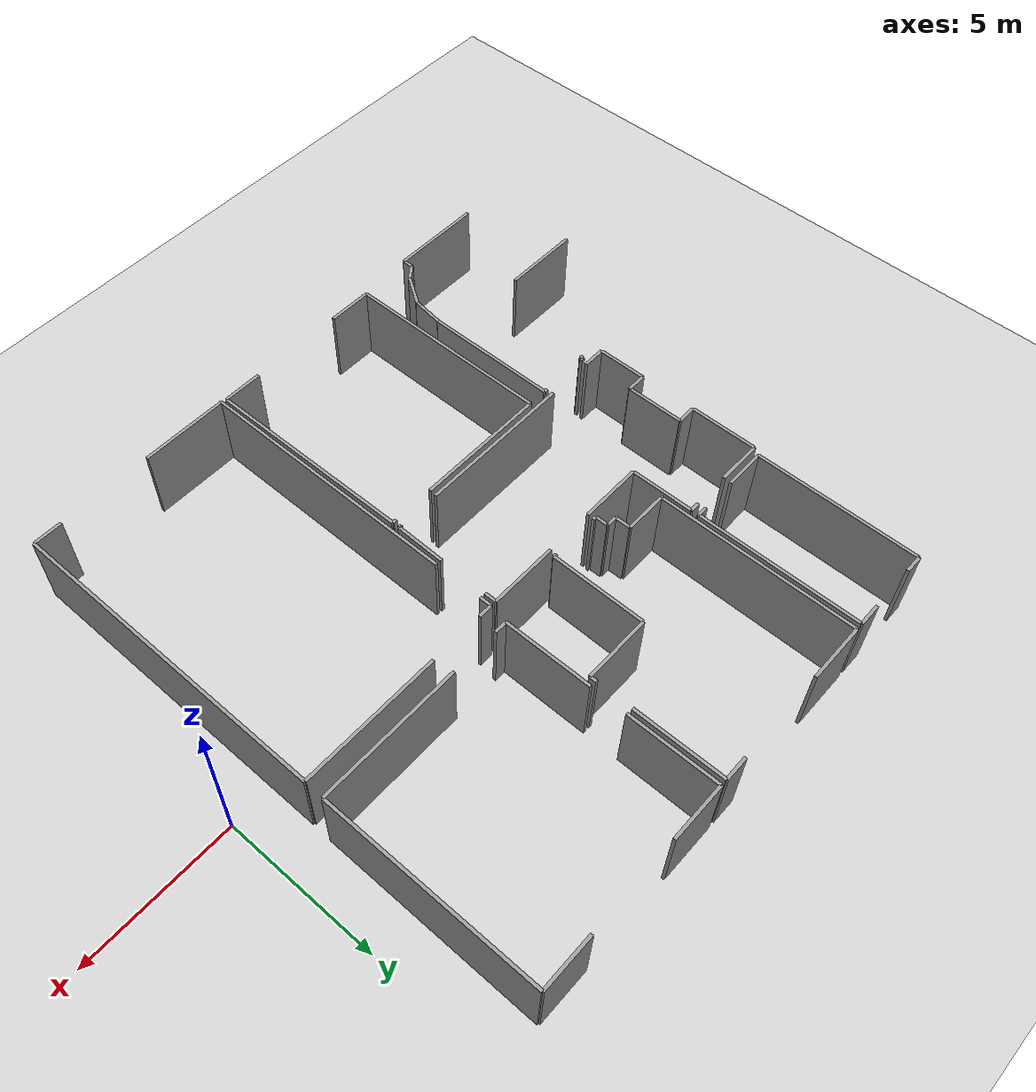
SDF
<sdf version="1.6">
 <world name="default">
  <model name="ground_plane">
   <static>1</static>
   <link name="link">
    <collision name="collision">
     <geometry><plane><normal>0 0 1</normal><size>100 100</size></plane></geometry>
     <surface><friction><ode><mu>100</mu><mu2>50</mu2></ode></friction></surface>
    </collision>
    <visual name="visual">
     <cast_shadows>0</cast_shadows>
     <geometry><plane><normal>0 0 1</normal><size>100 100</size></plane></geometry>
     <material>
      <script><uri>file://media/materials/scripts/gazebo.material</uri><name>Gazebo/Grey</name></script>
     </material>
    </visual>
   </link>
  </model>
  <model name="0510034840_A-40">
   <static>1</static>
   <link name="Wall_52">
    <collision name="Wall_52_Collision">
     <geometry><box><size>2.99740421292 0.1 2.5</size></box></geometry>
     <pose>1.49870210646 0 1.25 0 0 0</pose>
    </collision>
    <visual name="Wall_52_Visual">
     <pose>1.49870210646 0 1.25 0 0 0</pose>
     <geometry><box><size>2.99740421292 0.1 2.5</size></box></geometry>
     <material>
      <script><uri>file://media/materials/scripts/gazebo.material</uri><name>Gazebo/Grey</name></script>
      <ambient>1 1 1 1</ambient>
     </material>
    </visual>
    <pose>17.5726534783 -18.1401725024 0 0 0 3.14159265359</pose>
   </link>
   <link name="Wall_59">
    <collision name="Wall_59_Collision">
     <geometry><box><size>2.50769533456 0.1 2.5</size></box></geometry>
     <pose>1.25384766728 0 1.25 0 0 0</pose>
    </collision>
    <visual name="Wall_59_Visual">
     <pose>1.25384766728 0 1.25 0 0 0</pose>
     <geometry><box><size>2.50769533456 0.1 2.5</size></box></geometry>
     <material>
      <script><uri>file://media/materials/scripts/gazebo.material</uri><name>Gazebo/Grey</name></script>
      <ambient>1 1 1 1</ambient>
     </material>
    </visual>
    <pose>15.8744121399 -14.9674733281 0 0 0 3.14159265359</pose>
   </link>
   <link name="Wall_65">
    <collision name="Wall_65_Collision">
     <geometry><box><size>0.118428818949 0.1 2.5</size></box></geometry>
     <pose>0.0592144094743 0 1.25 0 0 0</pose>
    </collision>
    <visual name="Wall_65_Visual">
     <pose>0.0592144094743 0 1.25 0 0 0</pose>
     <geometry><box><size>0.118428818949 0.1 2.5</size></box></geometry>
     <material>
      <script><uri>file://media/materials/scripts/gazebo.material</uri><name>Gazebo/Grey</name></script>
      <ambient>1 1 1 1</ambient>
     </material>
    </visual>
    <pose>16.9808901836 -11.4278098284 0 0 0 1.57079632679</pose>
   </link>
   <link name="Wall_66">
    <collision name="Wall_66_Collision">
     <geometry><box><size>0.120840552668 0.1 2.5</size></box></geometry>
     <pose>0.0604202763339 0 1.25 0 0 0</pose>
    </collision>
    <visual name="Wall_66_Visual">
     <pose>0.0604202763339 0 1.25 0 0 0</pose>
     <geometry><box><size>0.120840552668 0.1 2.5</size></box></geometry>
     <material>
      <script><uri>file://media/materials/scripts/gazebo.material</uri><name>Gazebo/Grey</name></script>
      <ambient>1 1 1 1</ambient>
     </material>
    </visual>
    <pose>16.9808901836 -11.3093810095 0 0 0 0.0</pose>
   </link>
   <link name="Wall_67">
    <collision name="Wall_67_Collision">
     <geometry><box><size>0.108781884072 0.1 2.5</size></box></geometry>
     <pose>0.0543909420359 0 1.25 0 0 0</pose>
    </collision>
    <visual name="Wall_67_Visual">
     <pose>0.0543909420359 0 1.25 0 0 0</pose>
     <geometry><box><size>0.108781884072 0.1 2.5</size></box></geometry>
     <material>
      <script><uri>file://media/materials/scripts/gazebo.material</uri><name>Gazebo/Grey</name></script>
      <ambient>1 1 1 1</ambient>
     </material>
    </visual>
    <pose>18.653998718 -11.3093810095 0 0 0 0.0</pose>
   </link>
   <link name="Wall_68">
    <collision name="Wall_68_Collision">
     <geometry><box><size>4.26140654849 0.1 2.5</size></box></geometry>
     <pose>2.13070327425 0 1.25 0 0 0</pose>
    </collision>
    <visual name="Wall_68_Visual">
     <pose>2.13070327425 0 1.25 0 0 0</pose>
     <geometry><box><size>4.26140654849 0.1 2.5</size></box></geometry>
     <material>
      <script><uri>file://media/materials/scripts/gazebo.material</uri><name>Gazebo/Grey</name></script>
      <ambient>1 1 1 1</ambient>
     </material>
    </visual>
    <pose>18.762780602 -11.3093810095 0 0 0 -1.57079632679</pose>
   </link>
   <link name="Wall_69">
    <collision name="Wall_69_Collision">
     <geometry><box><size>1.02752098959 0.1 2.5</size></box></geometry>
     <pose>0.513760494797 0 1.25 0 0 0</pose>
    </collision>
    <visual name="Wall_69_Visual">
     <pose>0.513760494797 0 1.25 0 0 0</pose>
     <geometry><box><size>1.02752098959 0.1 2.5</size></box></geometry>
     <material>
      <script><uri>file://media/materials/scripts/gazebo.material</uri><name>Gazebo/Grey</name></script>
      <ambient>1 1 1 1</ambient>
     </material>
    </visual>
    <pose>18.762780602 -15.570787558 0 0 0 -1.71147046097</pose>
   </link>
   <link name="Wall_70">
    <collision name="Wall_70_Collision">
     <geometry><box><size>1.09154760842 0.1 2.5</size></box></geometry>
     <pose>0.545773804212 0 1.25 0 0 0</pose>
    </collision>
    <visual name="Wall_70_Visual">
     <pose>0.545773804212 0 1.25 0 0 0</pose>
     <geometry><box><size>1.09154760842 0.1 2.5</size></box></geometry>
     <material>
      <script><uri>file://media/materials/scripts/gazebo.material</uri><name>Gazebo/Grey</name></script>
      <ambient>1 1 1 1</ambient>
     </material>
    </visual>
    <pose>18.6187112457 -16.5881583874 0 0 0 -2.16860380256</pose>
   </link>
   <link name="Wall_71">
    <collision name="Wall_71_Collision">
     <geometry><box><size>0.535511781286 0.1 2.5</size></box></geometry>
     <pose>0.267755890643 0 1.25 0 0 0</pose>
    </collision>
    <visual name="Wall_71_Visual">
     <pose>0.267755890643 0 1.25 0 0 0</pose>
     <geometry><box><size>0.535511781286 0.1 2.5</size></box></geometry>
     <material>
      <script><uri>file://media/materials/scripts/gazebo.material</uri><name>Gazebo/Grey</name></script>
      <ambient>1 1 1 1</ambient>
     </material>
    </visual>
    <pose>18.004353814 -17.4904006651 0 0 0 -2.50880558985</pose>
   </link>
   <link name="Wall_72">
    <collision name="Wall_72_Collision">
     <geometry><box><size>0.333073144145 0.1 2.5</size></box></geometry>
     <pose>0.166536572073 0 1.25 0 0 0</pose>
    </collision>
    <visual name="Wall_72_Visual">
     <pose>0.166536572073 0 1.25 0 0 0</pose>
     <geometry><box><size>0.333073144145 0.1 2.5</size></box></geometry>
     <material>
      <script><uri>file://media/materials/scripts/gazebo.material</uri><name>Gazebo/Grey</name></script>
      <ambient>1 1 1 1</ambient>
     </material>
    </visual>
    <pose>17.5725265449 -17.8070993825 0 0 0 -1.57041522925</pose>
   </link>
   <link name="Wall_73">
    <collision name="Wall_73_Collision">
     <geometry><box><size>0.0906304145009 0.1 2.5</size></box></geometry>
     <pose>0.0453152072504 0 1.25 0 0 0</pose>
    </collision>
    <visual name="Wall_73_Visual">
     <pose>0.0453152072504 0 1.25 0 0 0</pose>
     <geometry><box><size>0.0906304145009 0.1 2.5</size></box></geometry>
     <material>
      <script><uri>file://media/materials/scripts/gazebo.material</uri><name>Gazebo/Grey</name></script>
      <ambient>1 1 1 1</ambient>
     </material>
    </visual>
    <pose>25.1599677589 -11.0862321738 0 0 0 3.14159265359</pose>
   </link>
   <link name="Wall_74">
    <collision name="Wall_74_Collision">
     <geometry><box><size>5.06603707723 0.1 2.5</size></box></geometry>
     <pose>2.53301853862 0 1.25 0 0 0</pose>
    </collision>
    <visual name="Wall_74_Visual">
     <pose>2.53301853862 0 1.25 0 0 0</pose>
     <geometry><box><size>5.06603707723 0.1 2.5</size></box></geometry>
     <material>
      <script><uri>file://media/materials/scripts/gazebo.material</uri><name>Gazebo/Grey</name></script>
      <ambient>1 1 1 1</ambient>
     </material>
    </visual>
    <pose>23.7051845928 -11.0862321738 0 0 0 3.14159265359</pose>
   </link>
   <link name="Wall_75">
    <collision name="Wall_75_Collision">
     <geometry><box><size>0.725804916129 0.1 2.5</size></box></geometry>
     <pose>0.362902458064 0 1.25 0 0 0</pose>
    </collision>
    <visual name="Wall_75_Visual">
     <pose>0.362902458064 0 1.25 0 0 0</pose>
     <geometry><box><size>0.725804916129 0.1 2.5</size></box></geometry>
     <material>
      <script><uri>file://media/materials/scripts/gazebo.material</uri><name>Gazebo/Grey</name></script>
      <ambient>1 1 1 1</ambient>
     </material>
    </visual>
    <pose>17.1154395385 -11.0862321738 0 0 0 3.14159265359</pose>
   </link>
   <link name="Wall_76">
    <collision name="Wall_76_Collision">
     <geometry><box><size>1.56788078419 0.1 2.5</size></box></geometry>
     <pose>0.783940392097 0 1.25 0 0 0</pose>
    </collision>
    <visual name="Wall_76_Visual">
     <pose>0.783940392097 0 1.25 0 0 0</pose>
     <geometry><box><size>1.56788078419 0.1 2.5</size></box></geometry>
     <material>
      <script><uri>file://media/materials/scripts/gazebo.material</uri><name>Gazebo/Grey</name></script>
      <ambient>1 1 1 1</ambient>
     </material>
    </visual>
    <pose>16.3896346223 -11.0862321738 0 0 0 1.57079632679</pose>
   </link>
   <link name="Wall_77">
    <collision name="Wall_77_Collision">
     <geometry><box><size>0.609660897546 0.1 2.5</size></box></geometry>
     <pose>0.304830448773 0 1.25 0 0 0</pose>
    </collision>
    <visual name="Wall_77_Visual">
     <pose>0.304830448773 0 1.25 0 0 0</pose>
     <geometry><box><size>0.609660897546 0.1 2.5</size></box></geometry>
     <material>
      <script><uri>file://media/materials/scripts/gazebo.material</uri><name>Gazebo/Grey</name></script>
      <ambient>1 1 1 1</ambient>
     </material>
    </visual>
    <pose>16.3896346223 -9.5183513896 0 0 0 0.0</pose>
   </link>
   <link name="Wall_78">
    <collision name="Wall_78_Collision">
     <geometry><box><size>1.83609096044 0.1 2.5</size></box></geometry>
     <pose>0.918045480221 0 1.25 0 0 0</pose>
    </collision>
    <visual name="Wall_78_Visual">
     <pose>0.918045480221 0 1.25 0 0 0</pose>
     <geometry><box><size>1.83609096044 0.1 2.5</size></box></geometry>
     <material>
      <script><uri>file://media/materials/scripts/gazebo.material</uri><name>Gazebo/Grey</name></script>
      <ambient>1 1 1 1</ambient>
     </material>
    </visual>
    <pose>16.9992955199 -9.5183513896 0 0 0 1.57079632679</pose>
   </link>
   <link name="Wall_79">
    <collision name="Wall_79_Collision">
     <geometry><box><size>0.616896098703 0.1 2.5</size></box></geometry>
     <pose>0.308448049352 0 1.25 0 0 0</pose>
    </collision>
    <visual name="Wall_79_Visual">
     <pose>0.308448049352 0 1.25 0 0 0</pose>
     <geometry><box><size>0.616896098703 0.1 2.5</size></box></geometry>
     <material>
      <script><uri>file://media/materials/scripts/gazebo.material</uri><name>Gazebo/Grey</name></script>
      <ambient>1 1 1 1</ambient>
     </material>
    </visual>
    <pose>16.9992955199 -7.68226042916 0 0 0 3.14159265359</pose>
   </link>
   <link name="Wall_80">
    <collision name="Wall_80_Collision">
     <geometry><box><size>2.17728781503 0.1 2.5</size></box></geometry>
     <pose>1.08864390752 0 1.25 0 0 0</pose>
    </collision>
    <visual name="Wall_80_Visual">
     <pose>1.08864390752 0 1.25 0 0 0</pose>
     <geometry><box><size>2.17728781503 0.1 2.5</size></box></geometry>
     <material>
      <script><uri>file://media/materials/scripts/gazebo.material</uri><name>Gazebo/Grey</name></script>
      <ambient>1 1 1 1</ambient>
     </material>
    </visual>
    <pose>16.3823994212 -7.68226042916 0 0 0 1.57079632679</pose>
   </link>
   <link name="Wall_81">
    <collision name="Wall_81_Collision">
     <geometry><box><size>1.46595330122 0.1 2.5</size></box></geometry>
     <pose>0.73297665061 0 1.25 0 0 0</pose>
    </collision>
    <visual name="Wall_81_Visual">
     <pose>0.73297665061 0 1.25 0 0 0</pose>
     <geometry><box><size>1.46595330122 0.1 2.5</size></box></geometry>
     <material>
      <script><uri>file://media/materials/scripts/gazebo.material</uri><name>Gazebo/Grey</name></script>
      <ambient>1 1 1 1</ambient>
     </material>
    </visual>
    <pose>16.3823994212 -5.50497261413 0 0 0 0.0</pose>
   </link>
   <link name="Wall_82">
    <collision name="Wall_82_Collision">
     <geometry><box><size>0.316698717338 0.1 2.5</size></box></geometry>
     <pose>0.158349358669 0 1.25 0 0 0</pose>
    </collision>
    <visual name="Wall_82_Visual">
     <pose>0.158349358669 0 1.25 0 0 0</pose>
     <geometry><box><size>0.316698717338 0.1 2.5</size></box></geometry>
     <material>
      <script><uri>file://media/materials/scripts/gazebo.material</uri><name>Gazebo/Grey</name></script>
      <ambient>1 1 1 1</ambient>
     </material>
    </visual>
    <pose>19.0505385148 -5.50497261413 0 0 0 0.0</pose>
   </link>
   <link name="Wall_83">
    <collision name="Wall_83_Collision">
     <geometry><box><size>2.0226829903 0.1 2.5</size></box></geometry>
     <pose>1.01134149515 0 1.25 0 0 0</pose>
    </collision>
    <visual name="Wall_83_Visual">
     <pose>1.01134149515 0 1.25 0 0 0</pose>
     <geometry><box><size>2.0226829903 0.1 2.5</size></box></geometry>
     <material>
      <script><uri>file://media/materials/scripts/gazebo.material</uri><name>Gazebo/Grey</name></script>
      <ambient>1 1 1 1</ambient>
     </material>
    </visual>
    <pose>19.3672372321 -5.50497261413 0 0 0 -1.57079632679</pose>
   </link>
   <link name="Wall_84">
    <collision name="Wall_84_Collision">
     <geometry><box><size>2.02065205664 0.1 2.5</size></box></geometry>
     <pose>1.01032602832 0 1.25 0 0 0</pose>
    </collision>
    <visual name="Wall_84_Visual">
     <pose>1.01032602832 0 1.25 0 0 0</pose>
     <geometry><box><size>2.02065205664 0.1 2.5</size></box></geometry>
     <material>
      <script><uri>file://media/materials/scripts/gazebo.material</uri><name>Gazebo/Grey</name></script>
      <ambient>1 1 1 1</ambient>
     </material>
    </visual>
    <pose>19.3672372321 -7.52765560442 0 0 0 0.0</pose>
   </link>
   <link name="Wall_85">
    <collision name="Wall_85_Collision">
     <geometry><box><size>2.22806115649 0.1 2.5</size></box></geometry>
     <pose>1.11403057824 0 1.25 0 0 0</pose>
    </collision>
    <visual name="Wall_85_Visual">
     <pose>1.11403057824 0 1.25 0 0 0</pose>
     <geometry><box><size>2.22806115649 0.1 2.5</size></box></geometry>
     <material>
      <script><uri>file://media/materials/scripts/gazebo.material</uri><name>Gazebo/Grey</name></script>
      <ambient>1 1 1 1</ambient>
     </material>
    </visual>
    <pose>22.9649092744 -7.52765560442 0 0 0 0.0</pose>
   </link>
   <link name="Wall_86">
    <collision name="Wall_86_Collision">
     <geometry><box><size>0.379530727392 0.1 2.5</size></box></geometry>
     <pose>0.189765363696 0 1.25 0 0 0</pose>
    </collision>
    <visual name="Wall_86_Visual">
     <pose>0.189765363696 0 1.25 0 0 0</pose>
     <geometry><box><size>0.379530727392 0.1 2.5</size></box></geometry>
     <material>
      <script><uri>file://media/materials/scripts/gazebo.material</uri><name>Gazebo/Grey</name></script>
      <ambient>1 1 1 1</ambient>
     </material>
    </visual>
    <pose>25.1929704309 -7.52765560442 0 0 0 -1.57079632679</pose>
   </link>
   <link name="Wall_87">
    <collision name="Wall_87_Collision">
     <geometry><box><size>1.60338100902 0.1 2.5</size></box></geometry>
     <pose>0.801690504511 0 1.25 0 0 0</pose>
    </collision>
    <visual name="Wall_87_Visual">
     <pose>0.801690504511 0 1.25 0 0 0</pose>
     <geometry><box><size>1.60338100902 0.1 2.5</size></box></geometry>
     <material>
      <script><uri>file://media/materials/scripts/gazebo.material</uri><name>Gazebo/Grey</name></script>
      <ambient>1 1 1 1</ambient>
     </material>
    </visual>
    <pose>25.1929704309 -9.48319085064 0 0 0 -1.5913809555</pose>
   </link>
   <link name="Wall_88">
    <collision name="Wall_88_Collision">
     <geometry><box><size>0.326599518923 0.1 2.5</size></box></geometry>
     <pose>0.163299759461 0 1.25 0 0 0</pose>
    </collision>
    <visual name="Wall_88_Visual">
     <pose>0.163299759461 0 1.25 0 0 0</pose>
     <geometry><box><size>0.326599518923 0.1 2.5</size></box></geometry>
     <material>
      <script><uri>file://media/materials/scripts/gazebo.material</uri><name>Gazebo/Grey</name></script>
      <ambient>1 1 1 1</ambient>
     </material>
    </visual>
    <pose>19.3507358961 -5.25821417465 0 0 0 3.14159265359</pose>
   </link>
   <link name="Wall_89">
    <collision name="Wall_89_Collision">
     <geometry><box><size>1.33533888032 0.1 2.5</size></box></geometry>
     <pose>0.66766944016 0 1.25 0 0 0</pose>
    </collision>
    <visual name="Wall_89_Visual">
     <pose>0.66766944016 0 1.25 0 0 0</pose>
     <geometry><box><size>1.33533888032 0.1 2.5</size></box></geometry>
     <material>
      <script><uri>file://media/materials/scripts/gazebo.material</uri><name>Gazebo/Grey</name></script>
      <ambient>1 1 1 1</ambient>
     </material>
    </visual>
    <pose>17.8712007261 -5.25821417465 0 0 0 3.14159265359</pose>
   </link>
   <link name="Wall_90">
    <collision name="Wall_90_Collision">
     <geometry><box><size>5.25707177446 0.1 2.5</size></box></geometry>
     <pose>2.62853588723 0 1.25 0 0 0</pose>
    </collision>
    <visual name="Wall_90_Visual">
     <pose>2.62853588723 0 1.25 0 0 0</pose>
     <geometry><box><size>5.25707177446 0.1 2.5</size></box></geometry>
     <material>
      <script><uri>file://media/materials/scripts/gazebo.material</uri><name>Gazebo/Grey</name></script>
      <ambient>1 1 1 1</ambient>
     </material>
    </visual>
    <pose>16.5358618457 -5.25821417465 0 0 0 1.57079632679</pose>
   </link>
   <link name="Wall_91">
    <collision name="Wall_91_Collision">
     <geometry><box><size>0.573865691819 0.1 2.5</size></box></geometry>
     <pose>0.286932845909 0 1.25 0 0 0</pose>
    </collision>
    <visual name="Wall_91_Visual">
     <pose>0.286932845909 0 1.25 0 0 0</pose>
     <geometry><box><size>0.573865691819 0.1 2.5</size></box></geometry>
     <material>
      <script><uri>file://media/materials/scripts/gazebo.material</uri><name>Gazebo/Grey</name></script>
      <ambient>1 1 1 1</ambient>
     </material>
    </visual>
    <pose>16.5358618457 -0.00114240018279 0 0 0 0.0</pose>
   </link>
   <link name="Wall_92">
    <collision name="Wall_92_Collision">
     <geometry><box><size>0.734817184237 0.1 2.5</size></box></geometry>
     <pose>0.367408592119 0 1.25 0 0 0</pose>
    </collision>
    <visual name="Wall_92_Visual">
     <pose>0.367408592119 0 1.25 0 0 0</pose>
     <geometry><box><size>0.734817184237 0.1 2.5</size></box></geometry>
     <material>
      <script><uri>file://media/materials/scripts/gazebo.material</uri><name>Gazebo/Grey</name></script>
      <ambient>1 1 1 1</ambient>
     </material>
    </visual>
    <pose>18.6129992447 -0.00114240018279 0 0 0 0.0</pose>
   </link>
   <link name="Wall_93">
    <collision name="Wall_93_Collision">
     <geometry><box><size>5.25707258511 0.1 2.5</size></box></geometry>
     <pose>2.62853629256 0 1.25 0 0 0</pose>
    </collision>
    <visual name="Wall_93_Visual">
     <pose>2.62853629256 0 1.25 0 0 0</pose>
     <geometry><box><size>5.25707258511 0.1 2.5</size></box></geometry>
     <material>
      <script><uri>file://media/materials/scripts/gazebo.material</uri><name>Gazebo/Grey</name></script>
      <ambient>1 1 1 1</ambient>
     </material>
    </visual>
    <pose>19.347816429 -0.00114240018279 0 0 0 -1.57024098592</pose>
   </link>
   <link name="Wall_94">
    <collision name="Wall_94_Collision">
     <geometry><box><size>0.098754149134 0.1 2.5</size></box></geometry>
     <pose>0.049377074567 0 1.25 0 0 0</pose>
    </collision>
    <visual name="Wall_94_Visual">
     <pose>0.049377074567 0 1.25 0 0 0</pose>
     <geometry><box><size>0.098754149134 0.1 2.5</size></box></geometry>
     <material>
      <script><uri>file://media/materials/scripts/gazebo.material</uri><name>Gazebo/Grey</name></script>
      <ambient>1 1 1 1</ambient>
     </material>
    </visual>
    <pose>23.0722948916 -7.31986570451 0 0 0 3.14159265359</pose>
   </link>
   <link name="Wall_95">
    <collision name="Wall_95_Collision">
     <geometry><box><size>0.120840552668 0.1 2.5</size></box></geometry>
     <pose>0.0604202763339 0 1.25 0 0 0</pose>
    </collision>
    <visual name="Wall_95_Visual">
     <pose>0.0604202763339 0 1.25 0 0 0</pose>
     <geometry><box><size>0.120840552668 0.1 2.5</size></box></geometry>
     <material>
      <script><uri>file://media/materials/scripts/gazebo.material</uri><name>Gazebo/Grey</name></script>
      <ambient>1 1 1 1</ambient>
     </material>
    </visual>
    <pose>21.4150530264 -7.31986570451 0 0 0 3.14159265359</pose>
   </link>
   <link name="Wall_96">
    <collision name="Wall_96_Collision">
     <geometry><box><size>0.41710300007 0.1 2.5</size></box></geometry>
     <pose>0.208551500035 0 1.25 0 0 0</pose>
    </collision>
    <visual name="Wall_96_Visual">
     <pose>0.208551500035 0 1.25 0 0 0</pose>
     <geometry><box><size>0.41710300007 0.1 2.5</size></box></geometry>
     <material>
      <script><uri>file://media/materials/scripts/gazebo.material</uri><name>Gazebo/Grey</name></script>
      <ambient>1 1 1 1</ambient>
     </material>
    </visual>
    <pose>21.2942124737 -7.31986570451 0 0 0 1.57079632679</pose>
   </link>
   <link name="Wall_97">
    <collision name="Wall_97_Collision">
     <geometry><box><size>0.345639521969 0.1 2.5</size></box></geometry>
     <pose>0.172819760984 0 1.25 0 0 0</pose>
    </collision>
    <visual name="Wall_97_Visual">
     <pose>0.172819760984 0 1.25 0 0 0</pose>
     <geometry><box><size>0.345639521969 0.1 2.5</size></box></geometry>
     <material>
      <script><uri>file://media/materials/scripts/gazebo.material</uri><name>Gazebo/Grey</name></script>
      <ambient>1 1 1 1</ambient>
     </material>
    </visual>
    <pose>21.2942124737 -6.90276270444 0 0 0 3.14159265359</pose>
   </link>
   <link name="Wall_98">
    <collision name="Wall_98_Collision">
     <geometry><box><size>0.510399014997 0.1 2.5</size></box></geometry>
     <pose>0.255199507499 0 1.25 0 0 0</pose>
    </collision>
    <visual name="Wall_98_Visual">
     <pose>0.255199507499 0 1.25 0 0 0</pose>
     <geometry><box><size>0.510399014997 0.1 2.5</size></box></geometry>
     <material>
      <script><uri>file://media/materials/scripts/gazebo.material</uri><name>Gazebo/Grey</name></script>
      <ambient>1 1 1 1</ambient>
     </material>
    </visual>
    <pose>20.9485729518 -6.90276270444 0 0 0 1.57079632679</pose>
   </link>
   <link name="Wall_99">
    <collision name="Wall_99_Collision">
     <geometry><box><size>1.38814315544 0.1 2.5</size></box></geometry>
     <pose>0.694071577718 0 1.25 0 0 0</pose>
    </collision>
    <visual name="Wall_99_Visual">
     <pose>0.694071577718 0 1.25 0 0 0</pose>
     <geometry><box><size>1.38814315544 0.1 2.5</size></box></geometry>
     <material>
      <script><uri>file://media/materials/scripts/gazebo.material</uri><name>Gazebo/Grey</name></script>
      <ambient>1 1 1 1</ambient>
     </material>
    </visual>
    <pose>20.9485729518 -6.39236368944 0 0 0 3.14159265359</pose>
   </link>
   <link name="Wall_100">
    <collision name="Wall_100_Collision">
     <geometry><box><size>6.39236368944 0.1 2.5</size></box></geometry>
     <pose>3.19618184472 0 1.25 0 0 0</pose>
    </collision>
    <visual name="Wall_100_Visual">
     <pose>3.19618184472 0 1.25 0 0 0</pose>
     <geometry><box><size>6.39236368944 0.1 2.5</size></box></geometry>
     <material>
      <script><uri>file://media/materials/scripts/gazebo.material</uri><name>Gazebo/Grey</name></script>
      <ambient>1 1 1 1</ambient>
     </material>
    </visual>
    <pose>19.5604297963 -6.39236368944 0 0 0 1.57079632679</pose>
   </link>
   <link name="Wall_101">
    <collision name="Wall_101_Collision">
     <geometry><box><size>1.91885150702 0.1 2.5</size></box></geometry>
     <pose>0.959425753508 0 1.25 0 0 0</pose>
    </collision>
    <visual name="Wall_101_Visual">
     <pose>0.959425753508 0 1.25 0 0 0</pose>
     <geometry><box><size>1.91885150702 0.1 2.5</size></box></geometry>
     <material>
      <script><uri>file://media/materials/scripts/gazebo.material</uri><name>Gazebo/Grey</name></script>
      <ambient>1 1 1 1</ambient>
     </material>
    </visual>
    <pose>19.5604297963 -0.0 0 0 0 0.0</pose>
   </link>
   <link name="Wall_102">
    <collision name="Wall_102_Collision">
     <geometry><box><size>0.78368652539 0.1 2.5</size></box></geometry>
     <pose>0.391843262695 0 1.25 0 0 0</pose>
    </collision>
    <visual name="Wall_102_Visual">
     <pose>0.391843262695 0 1.25 0 0 0</pose>
     <geometry><box><size>0.78368652539 0.1 2.5</size></box></geometry>
     <material>
      <script><uri>file://media/materials/scripts/gazebo.material</uri><name>Gazebo/Grey</name></script>
      <ambient>1 1 1 1</ambient>
     </material>
    </visual>
    <pose>24.5035953872 -0.0 0 0 0 0.0</pose>
   </link>
   <link name="Wall_103">
    <collision name="Wall_103_Collision">
     <geometry><box><size>2.89128792927 0.1 2.5</size></box></geometry>
     <pose>1.44564396464 0 1.25 0 0 0</pose>
    </collision>
    <visual name="Wall_103_Visual">
     <pose>1.44564396464 0 1.25 0 0 0</pose>
     <geometry><box><size>2.89128792927 0.1 2.5</size></box></geometry>
     <material>
      <script><uri>file://media/materials/scripts/gazebo.material</uri><name>Gazebo/Grey</name></script>
      <ambient>1 1 1 1</ambient>
     </material>
    </visual>
    <pose>25.2872819126 -0.0 0 0 0 -1.57079632679</pose>
   </link>
   <link name="Wall_104">
    <collision name="Wall_104_Collision">
     <geometry><box><size>0.21464430101 0.1 2.5</size></box></geometry>
     <pose>0.107322150505 0 1.25 0 0 0</pose>
    </collision>
    <visual name="Wall_104_Visual">
     <pose>0.107322150505 0 1.25 0 0 0</pose>
     <geometry><box><size>0.21464430101 0.1 2.5</size></box></geometry>
     <material>
      <script><uri>file://media/materials/scripts/gazebo.material</uri><name>Gazebo/Grey</name></script>
      <ambient>1 1 1 1</ambient>
     </material>
    </visual>
    <pose>25.2872819126 -4.04333504693 0 0 0 -1.57079632679</pose>
   </link>
   <link name="Wall_105">
    <collision name="Wall_105_Collision">
     <geometry><box><size>2.18921955028 0.1 2.5</size></box></geometry>
     <pose>1.09460977514 0 1.25 0 0 0</pose>
    </collision>
    <visual name="Wall_105_Visual">
     <pose>1.09460977514 0 1.25 0 0 0</pose>
     <geometry><box><size>2.18921955028 0.1 2.5</size></box></geometry>
     <material>
      <script><uri>file://media/materials/scripts/gazebo.material</uri><name>Gazebo/Grey</name></script>
      <ambient>1 1 1 1</ambient>
     </material>
    </visual>
    <pose>25.2872819126 -4.25797934794 0 0 0 3.14159265359</pose>
   </link>
   <link name="Wall_106">
    <collision name="Wall_106_Collision">
     <geometry><box><size>3.06199477842 0.1 2.5</size></box></geometry>
     <pose>1.53099738921 0 1.25 0 0 0</pose>
    </collision>
    <visual name="Wall_106_Visual">
     <pose>1.53099738921 0 1.25 0 0 0</pose>
     <geometry><box><size>3.06199477842 0.1 2.5</size></box></geometry>
     <material>
      <script><uri>file://media/materials/scripts/gazebo.material</uri><name>Gazebo/Grey</name></script>
      <ambient>1 1 1 1</ambient>
     </material>
    </visual>
    <pose>23.0980623624 -4.25797934794 0 0 0 -1.5792116824</pose>
   </link>
   <link name="Wall_107">
    <collision name="Wall_107_Collision">
     <geometry><box><size>1.26451006899 0.1 2.5</size></box></geometry>
     <pose>0.632255034494 0 1.25 0 0 0</pose>
    </collision>
    <visual name="Wall_107_Visual">
     <pose>0.632255034494 0 1.25 0 0 0</pose>
     <geometry><box><size>1.26451006899 0.1 2.5</size></box></geometry>
     <material>
      <script><uri>file://media/materials/scripts/gazebo.material</uri><name>Gazebo/Grey</name></script>
      <ambient>1 1 1 1</ambient>
     </material>
    </visual>
    <pose>25.2101064336 -18.0134930155 0 0 0 3.14159265359</pose>
   </link>
   <link name="Wall_108">
    <collision name="Wall_108_Collision">
     <geometry><box><size>1.43967809702 0.1 2.5</size></box></geometry>
     <pose>0.719839048508 0 1.25 0 0 0</pose>
    </collision>
    <visual name="Wall_108_Visual">
     <pose>0.719839048508 0 1.25 0 0 0</pose>
     <geometry><box><size>1.43967809702 0.1 2.5</size></box></geometry>
     <material>
      <script><uri>file://media/materials/scripts/gazebo.material</uri><name>Gazebo/Grey</name></script>
      <ambient>1 1 1 1</ambient>
     </material>
    </visual>
    <pose>20.8357292004 -18.0134930155 0 0 0 3.14159265359</pose>
   </link>
   <link name="Wall_109">
    <collision name="Wall_109_Collision">
     <geometry><box><size>6.69535360459 0.1 2.5</size></box></geometry>
     <pose>3.34767680229 0 1.25 0 0 0</pose>
    </collision>
    <visual name="Wall_109_Visual">
     <pose>3.34767680229 0 1.25 0 0 0</pose>
     <geometry><box><size>6.69535360459 0.1 2.5</size></box></geometry>
     <material>
      <script><uri>file://media/materials/scripts/gazebo.material</uri><name>Gazebo/Grey</name></script>
      <ambient>1 1 1 1</ambient>
     </material>
    </visual>
    <pose>19.3960511034 -18.0134930155 0 0 0 1.57079632679</pose>
   </link>
   <link name="Wall_110">
    <collision name="Wall_110_Collision">
     <geometry><box><size>4.28006575148 0.1 2.5</size></box></geometry>
     <pose>2.14003287574 0 1.25 0 0 0</pose>
    </collision>
    <visual name="Wall_110_Visual">
     <pose>2.14003287574 0 1.25 0 0 0</pose>
     <geometry><box><size>4.28006575148 0.1 2.5</size></box></geometry>
     <material>
      <script><uri>file://media/materials/scripts/gazebo.material</uri><name>Gazebo/Grey</name></script>
      <ambient>1 1 1 1</ambient>
     </material>
    </visual>
    <pose>19.3960511034 -11.3181394109 0 0 0 0.0</pose>
   </link>
   <link name="Wall_111">
    <collision name="Wall_111_Collision">
     <geometry><box><size>0.125156286692 0.1 2.5</size></box></geometry>
     <pose>0.0625781433458 0 1.25 0 0 0</pose>
    </collision>
    <visual name="Wall_111_Visual">
     <pose>0.0625781433458 0 1.25 0 0 0</pose>
     <geometry><box><size>0.125156286692 0.1 2.5</size></box></geometry>
     <material>
      <script><uri>file://media/materials/scripts/gazebo.material</uri><name>Gazebo/Grey</name></script>
      <ambient>1 1 1 1</ambient>
     </material>
    </visual>
    <pose>25.0405234732 -11.3181394109 0 0 0 0.0</pose>
   </link>
   <link name="Wall_112">
    <collision name="Wall_112_Collision">
     <geometry><box><size>6.69550099842 0.1 2.5</size></box></geometry>
     <pose>3.34775049921 0 1.25 0 0 0</pose>
    </collision>
    <visual name="Wall_112_Visual">
     <pose>3.34775049921 0 1.25 0 0 0</pose>
     <geometry><box><size>6.69550099842 0.1 2.5</size></box></geometry>
     <material>
      <script><uri>file://media/materials/scripts/gazebo.material</uri><name>Gazebo/Grey</name></script>
      <ambient>1 1 1 1</ambient>
     </material>
    </visual>
    <pose>25.1656797598 -11.3181394109 0 0 0 -1.56416097572</pose>
   </link>
   <link name="Wall_113">
    <collision name="Wall_113_Collision">
     <geometry><box><size>0.927502015067 0.1 2.5</size></box></geometry>
     <pose>0.463751007533 0 1.25 0 0 0</pose>
    </collision>
    <visual name="Wall_113_Visual">
     <pose>0.463751007533 0 1.25 0 0 0</pose>
     <geometry><box><size>0.927502015067 0.1 2.5</size></box></geometry>
     <material>
      <script><uri>file://media/materials/scripts/gazebo.material</uri><name>Gazebo/Grey</name></script>
      <ambient>1 1 1 1</ambient>
     </material>
    </visual>
    <pose>32.1674504801 -18.0490343545 0 0 0 3.14159265359</pose>
   </link>
   <link name="Wall_114">
    <collision name="Wall_114_Collision">
     <geometry><box><size>2.82185538483 0.1 2.5</size></box></geometry>
     <pose>1.41092769242 0 1.25 0 0 0</pose>
    </collision>
    <visual name="Wall_114_Visual">
     <pose>1.41092769242 0 1.25 0 0 0</pose>
     <geometry><box><size>2.82185538483 0.1 2.5</size></box></geometry>
     <material>
      <script><uri>file://media/materials/scripts/gazebo.material</uri><name>Gazebo/Grey</name></script>
      <ambient>1 1 1 1</ambient>
     </material>
    </visual>
    <pose>28.1974829116 -18.0490343545 0 0 0 3.14159265359</pose>
   </link>
   <link name="Wall_115">
    <collision name="Wall_115_Collision">
     <geometry><box><size>8.55670430241 0.1 2.5</size></box></geometry>
     <pose>4.2783521512 0 1.25 0 0 0</pose>
    </collision>
    <visual name="Wall_115_Visual">
     <pose>4.2783521512 0 1.25 0 0 0</pose>
     <geometry><box><size>8.55670430241 0.1 2.5</size></box></geometry>
     <material>
      <script><uri>file://media/materials/scripts/gazebo.material</uri><name>Gazebo/Grey</name></script>
      <ambient>1 1 1 1</ambient>
     </material>
    </visual>
    <pose>25.3756275268 -18.0490343545 0 0 0 1.57079632679</pose>
   </link>
   <link name="Wall_116">
    <collision name="Wall_116_Collision">
     <geometry><box><size>0.376992060319 0.1 2.5</size></box></geometry>
     <pose>0.188496030159 0 1.25 0 0 0</pose>
    </collision>
    <visual name="Wall_116_Visual">
     <pose>0.188496030159 0 1.25 0 0 0</pose>
     <geometry><box><size>0.376992060319 0.1 2.5</size></box></geometry>
     <material>
      <script><uri>file://media/materials/scripts/gazebo.material</uri><name>Gazebo/Grey</name></script>
      <ambient>1 1 1 1</ambient>
     </material>
    </visual>
    <pose>25.3756275268 -7.91404073291 0 0 0 1.57079632679</pose>
   </link>
   <link name="Wall_117">
    <collision name="Wall_117_Collision">
     <geometry><box><size>0.448709405127 0.1 2.5</size></box></geometry>
     <pose>0.224354702563 0 1.25 0 0 0</pose>
    </collision>
    <visual name="Wall_117_Visual">
     <pose>0.224354702563 0 1.25 0 0 0</pose>
     <geometry><box><size>0.448709405127 0.1 2.5</size></box></geometry>
     <material>
      <script><uri>file://media/materials/scripts/gazebo.material</uri><name>Gazebo/Grey</name></script>
      <ambient>1 1 1 1</ambient>
     </material>
    </visual>
    <pose>25.3756275268 -7.53704867259 0 0 0 0.0</pose>
   </link>
   <link name="Wall_118">
    <collision name="Wall_118_Collision">
     <geometry><box><size>4.54941832791 0.1 2.5</size></box></geometry>
     <pose>2.27470916395 0 1.25 0 0 0</pose>
    </collision>
    <visual name="Wall_118_Visual">
     <pose>2.27470916395 0 1.25 0 0 0</pose>
     <geometry><box><size>4.54941832791 0.1 2.5</size></box></geometry>
     <material>
      <script><uri>file://media/materials/scripts/gazebo.material</uri><name>Gazebo/Grey</name></script>
      <ambient>1 1 1 1</ambient>
     </material>
    </visual>
    <pose>27.5927724148 -7.53704867259 0 0 0 0.0</pose>
   </link>
   <link name="Wall_119">
    <collision name="Wall_119_Collision">
     <geometry><box><size>10.5120160308 0.1 2.5</size></box></geometry>
     <pose>5.25600801539 0 1.25 0 0 0</pose>
    </collision>
    <visual name="Wall_119_Visual">
     <pose>5.25600801539 0 1.25 0 0 0</pose>
     <geometry><box><size>10.5120160308 0.1 2.5</size></box></geometry>
     <material>
      <script><uri>file://media/materials/scripts/gazebo.material</uri><name>Gazebo/Grey</name></script>
      <ambient>1 1 1 1</ambient>
     </material>
    </visual>
    <pose>32.1421907428 -7.53704867259 0 0 0 -1.56839338509</pose>
   </link>
   <link name="Wall_120">
    <collision name="Wall_120_Collision">
     <geometry><box><size>4.67419381454 0.1 2.5</size></box></geometry>
     <pose>2.33709690727 0 1.25 0 0 0</pose>
    </collision>
    <visual name="Wall_120_Visual">
     <pose>2.33709690727 0 1.25 0 0 0</pose>
     <geometry><box><size>4.67419381454 0.1 2.5</size></box></geometry>
     <material>
      <script><uri>file://media/materials/scripts/gazebo.material</uri><name>Gazebo/Grey</name></script>
      <ambient>1 1 1 1</ambient>
     </material>
    </visual>
    <pose>32.1613576792 -6.91342510615 0 0 0 3.14159265359</pose>
   </link>
   <link name="Wall_121">
    <collision name="Wall_121_Collision">
     <geometry><box><size>0.419387800435 0.1 2.5</size></box></geometry>
     <pose>0.209693900218 0 1.25 0 0 0</pose>
    </collision>
    <visual name="Wall_121_Visual">
     <pose>0.209693900218 0 1.25 0 0 0</pose>
     <geometry><box><size>0.419387800435 0.1 2.5</size></box></geometry>
     <material>
      <script><uri>file://media/materials/scripts/gazebo.material</uri><name>Gazebo/Grey</name></script>
      <ambient>1 1 1 1</ambient>
     </material>
    </visual>
    <pose>25.9164905466 -6.91342510615 0 0 0 3.14159265359</pose>
   </link>
   <link name="Wall_122">
    <collision name="Wall_122_Collision">
     <geometry><box><size>2.85270018977 0.1 2.5</size></box></geometry>
     <pose>1.42635009488 0 1.25 0 0 0</pose>
    </collision>
    <visual name="Wall_122_Visual">
     <pose>1.42635009488 0 1.25 0 0 0</pose>
     <geometry><box><size>2.85270018977 0.1 2.5</size></box></geometry>
     <material>
      <script><uri>file://media/materials/scripts/gazebo.material</uri><name>Gazebo/Grey</name></script>
      <ambient>1 1 1 1</ambient>
     </material>
    </visual>
    <pose>25.4971027462 -6.91342510615 0 0 0 1.57079632679</pose>
   </link>
   <link name="Wall_123">
    <collision name="Wall_123_Collision">
     <geometry><box><size>2.90931246549 0.1 2.5</size></box></geometry>
     <pose>1.45465623274 0 1.25 0 0 0</pose>
    </collision>
    <visual name="Wall_123_Visual">
     <pose>1.45465623274 0 1.25 0 0 0</pose>
     <geometry><box><size>2.90931246549 0.1 2.5</size></box></geometry>
     <material>
      <script><uri>file://media/materials/scripts/gazebo.material</uri><name>Gazebo/Grey</name></script>
      <ambient>1 1 1 1</ambient>
     </material>
    </visual>
    <pose>25.4971027462 -2.91375513287 0 0 0 1.57079632679</pose>
   </link>
   <link name="Wall_124">
    <collision name="Wall_124_Collision">
     <geometry><box><size>1.86071603105 0.1 2.5</size></box></geometry>
     <pose>0.930358015524 0 1.25 0 0 0</pose>
    </collision>
    <visual name="Wall_124_Visual">
     <pose>0.930358015524 0 1.25 0 0 0</pose>
     <geometry><box><size>1.86071603105 0.1 2.5</size></box></geometry>
     <material>
      <script><uri>file://media/materials/scripts/gazebo.material</uri><name>Gazebo/Grey</name></script>
      <ambient>1 1 1 1</ambient>
     </material>
    </visual>
    <pose>25.4971027462 -0.0044426673775 0 0 0 0.0</pose>
   </link>
   <link name="Wall_125">
    <collision name="Wall_125_Collision">
     <geometry><box><size>1.72908614332 0.1 2.5</size></box></geometry>
     <pose>0.86454307166 0 1.25 0 0 0</pose>
    </collision>
    <visual name="Wall_125_Visual">
     <pose>0.86454307166 0 1.25 0 0 0</pose>
     <geometry><box><size>1.72908614332 0.1 2.5</size></box></geometry>
     <material>
      <script><uri>file://media/materials/scripts/gazebo.material</uri><name>Gazebo/Grey</name></script>
      <ambient>1 1 1 1</ambient>
     </material>
    </visual>
    <pose>30.418689667 -0.0044426673775 0 0 0 0.0</pose>
   </link>
   <link name="Wall_126">
    <collision name="Wall_126_Collision">
     <geometry><box><size>6.90899578856 0.1 2.5</size></box></geometry>
     <pose>3.45449789428 0 1.25 0 0 0</pose>
    </collision>
    <visual name="Wall_126_Visual">
     <pose>3.45449789428 0 1.25 0 0 0</pose>
     <geometry><box><size>6.90899578856 0.1 2.5</size></box></geometry>
     <material>
      <script><uri>file://media/materials/scripts/gazebo.material</uri><name>Gazebo/Grey</name></script>
      <ambient>1 1 1 1</ambient>
     </material>
    </visual>
    <pose>32.1477758103 -0.0044426673775 0 0 0 -1.56883050166</pose>
   </link>
   <pose>-33.6 9.05692770511 0 0 0 0</pose>
  </model>
 </world>
</sdf>
